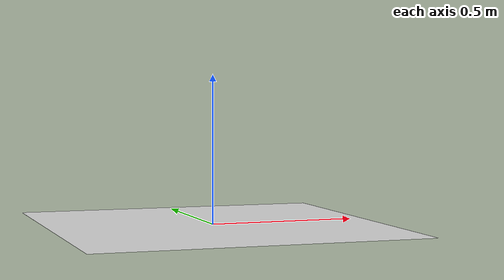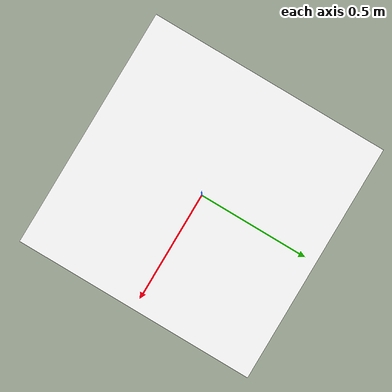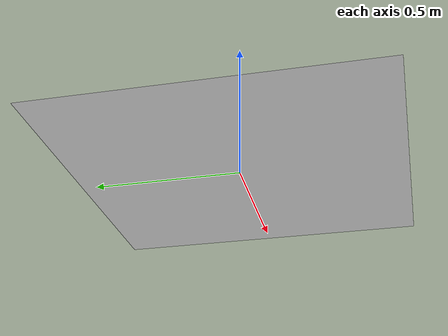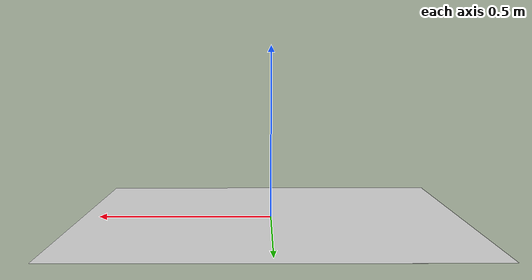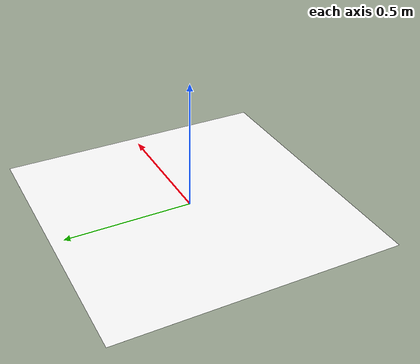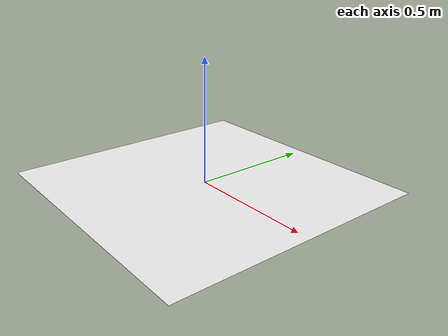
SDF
<?xml version='1.0'?>
<sdf version='1.5'>
  <model name='aruco_visual_marker_0'>

    <link name='marker'>
      <pose frame=''>0 0 0 0 0 0</pose>
      <visual name='visual'>
        <geometry>
          <box>
            <size>1.1 1.1 1e-5</size>
          </box>
        </geometry>
        <material>
          <script>
            <uri>model://aruco_visual_marker_0/materials/scripts</uri>
            <uri>model://aruco_visual_marker_0/materials/textures</uri>
            <name>ArucoVisualMarker0/Marker</name>
          </script>
          <ambient>1 1 1 1</ambient>
          <diffuse>1 1 1 1</diffuse>
          <specular>0.5 0.5 0.5 1</specular>
          <emissive>0.3 0.3 0.3 1</emissive>
          <reflectivity>
          <float>0.0</float>
          </reflectivity>
          <shader type='vertex'>
            <normal_map>__default__</normal_map>
          </shader>
        </material>
        <pose frame=''>0 0 0 0 -0 0</pose>
        <cast_shadows>1</cast_shadows>
        <transparency>0</transparency>
      </visual>
      <collision name='collision'>
        <laser_retro>0</laser_retro>
        <max_contacts>10</max_contacts>
        <pose frame=''>0 0 0 0 -0 0</pose>
        <geometry>
          <box>
            <size>1.1 1.1 1e-05</size>
          </box>
        </geometry>
      </collision>
    </link>

    <link name='marker_pad'>
      <pose frame='marker'>0 0 -1e-5 0 -0 0</pose>
      <visual name='visual'>
        <geometry>
          <box>
            <size>1.1 1.1 1e-5</size>
          </box>
        </geometry>
        <material>
          <lighting>1</lighting>
          <script>
            <uri>file://media/materials/scripts/gazebo.material</uri>
            <name>Gazebo/White</name>
          </script>
          <ambient>1 1 1 1</ambient>
          <diffuse>1 1 1 1</diffuse>
          <specular>0.5 0.5 0.5 1</specular>
          <emissive>0.3 0.3 0.3 1</emissive>
          <reflectivity>
          <float>0.0</float>
          </reflectivity>
          <shader type='vertex'>
            <normal_map>__default__</normal_map>
          </shader>
        </material>
        <cast_shadows>1</cast_shadows>
        <transparency>0</transparency>
      </visual>
      <collision name='collision'>
        <laser_retro>0</laser_retro>
        <max_contacts>10</max_contacts>
        <pose frame=''>0 0 0 0 -0 0</pose>
        <geometry>
          <box>
            <size>1.1 1.1 1e-5</size>
          </box>
        </geometry>
      </collision>
    </link>

    <joint name='marker_JOINT_marker_pad' type='revolute'>
      <parent>marker</parent>
      <child>marker_pad</child>
      <pose frame=''>0 0 0 0 -0 0</pose>
      <axis>
        <xyz>0 0 1</xyz>
        <limit>
          <upper>0</upper>
          <lower>0</lower>
        </limit>
      </axis>
    </joint>

    <static>1</static>
    <allow_auto_disable>1</allow_auto_disable>

  </model>
</sdf>
